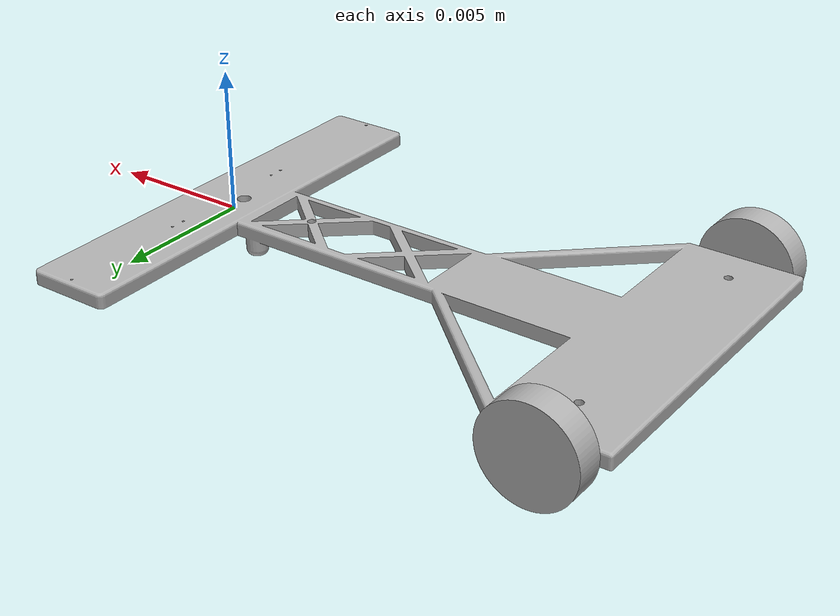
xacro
<?xml version="1.0" ?>
<robot name="Assignent" xmlns:xacro="http://www.ros.org/wiki/xacro">

<xacro:include filename="$(find Assignent_description)/urdf/materials.xacro" />
<xacro:include filename="$(find Assignent_description)/urdf/Assignent.trans" />
<xacro:include filename="$(find Assignent_description)/urdf/Assignent.gazebo" />
<link name="base_link">
  <inertial>
    <origin xyz="-0.008616682743921076 -9.376906117987113e-08 0.000239113764492349" rpy="0 0 0"/>
    <mass value="7.430343276716578e-05"/>
    <inertia ixx="0.0" iyy="0.0" izz="0.0" ixy="0.0" iyz="-0.0" ixz="0.0"/>
  </inertial>
  <visual>
    <origin xyz="0 0 0" rpy="0 0 0"/>
    <geometry>
      <mesh filename="package://Assignent_description/meshes/base_link.stl" scale="0.001 0.001 0.001"/>
    </geometry>
    <material name="silver"/>
  </visual>
  <collision>
    <origin xyz="0 0 0" rpy="0 0 0"/>
    <geometry>
      <mesh filename="package://Assignent_description/meshes/base_link.stl" scale="0.001 0.001 0.001"/>
    </geometry>
  </collision>
</link>

<link name="right__wheel_1">
  <inertial>
    <origin xyz="-1.8693918803561194e-07 -0.0005000001404732298 5.421010862427522e-20" rpy="0 0 0"/>
    <mass value="8.1045181875344e-06"/>
    <inertia ixx="0.0" iyy="0.0" izz="0.0" ixy="0.0" iyz="0.0" ixz="-0.0"/>
  </inertial>
  <visual>
    <origin xyz="0.016469 0.006 -0.0002" rpy="0 0 0"/>
    <geometry>
      <mesh filename="package://Assignent_description/meshes/right__wheel_1.stl" scale="0.001 0.001 0.001"/>
    </geometry>
    <material name="silver"/>
  </visual>
  <collision>
    <origin xyz="0.016469 0.006 -0.0002" rpy="0 0 0"/>
    <geometry>
      <mesh filename="package://Assignent_description/meshes/right__wheel_1.stl" scale="0.001 0.001 0.001"/>
    </geometry>
  </collision>
</link>

<link name="left_wheel_1">
  <inertial>
    <origin xyz="-1.8677630713240245e-07 0.0005000000894069675 1.3552527156068805e-19" rpy="0 0 0"/>
    <mass value="8.165801257993449e-06"/>
    <inertia ixx="0.0" iyy="0.0" izz="0.0" ixy="0.0" iyz="0.0" ixz="-0.0"/>
  </inertial>
  <visual>
    <origin xyz="0.016469 -0.006 -0.0002" rpy="0 0 0"/>
    <geometry>
      <mesh filename="package://Assignent_description/meshes/left_wheel_1.stl" scale="0.001 0.001 0.001"/>
    </geometry>
    <material name="silver"/>
  </visual>
  <collision>
    <origin xyz="0.016469 -0.006 -0.0002" rpy="0 0 0"/>
    <geometry>
      <mesh filename="package://Assignent_description/meshes/left_wheel_1.stl" scale="0.001 0.001 0.001"/>
    </geometry>
  </collision>
</link>

<joint name="Revolute 1" type="continuous">
  <origin xyz="-0.016469 -0.006 0.0002" rpy="0 0 0"/>
  <parent link="base_link"/>
  <child link="right__wheel_1"/>
  <axis xyz="-0.0 -1.0 0.0"/>
</joint>

<joint name="Revolute 2" type="continuous">
  <origin xyz="-0.016469 0.006 0.0002" rpy="0 0 0"/>
  <parent link="base_link"/>
  <child link="left_wheel_1"/>
  <axis xyz="0.0 1.0 0.0"/>
</joint>

</robot>

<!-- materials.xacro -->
<robot name="Assignent" xmlns:xacro="http://www.ros.org/wiki/xacro" >

<material name="silver">
  <color rgba="0.700 0.700 0.700 1.000"/>
</material>

</robot>

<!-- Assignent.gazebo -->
<robot name="Assignent" xmlns:xacro="http://www.ros.org/wiki/xacro" >

<xacro:property name="body_color" value="Gazebo/Silver" />

<gazebo>
  <plugin name="control" filename="libgazebo_ros_control.so"/>
</gazebo>
<gazebo reference="base_link">
  <material>${body_color}</material>
  <mu1>0.2</mu1>
  <mu2>0.2</mu2>
  <selfCollide>true</selfCollide>
  <gravity>true</gravity>
</gazebo>

<gazebo reference="right__wheel_1">
  <material>${body_color}</material>
  <mu1>0.2</mu1>
  <mu2>0.2</mu2>
  <selfCollide>true</selfCollide>
</gazebo>

<gazebo reference="left_wheel_1">
  <material>${body_color}</material>
  <mu1>0.2</mu1>
  <mu2>0.2</mu2>
  <selfCollide>true</selfCollide>
</gazebo>

</robot>
